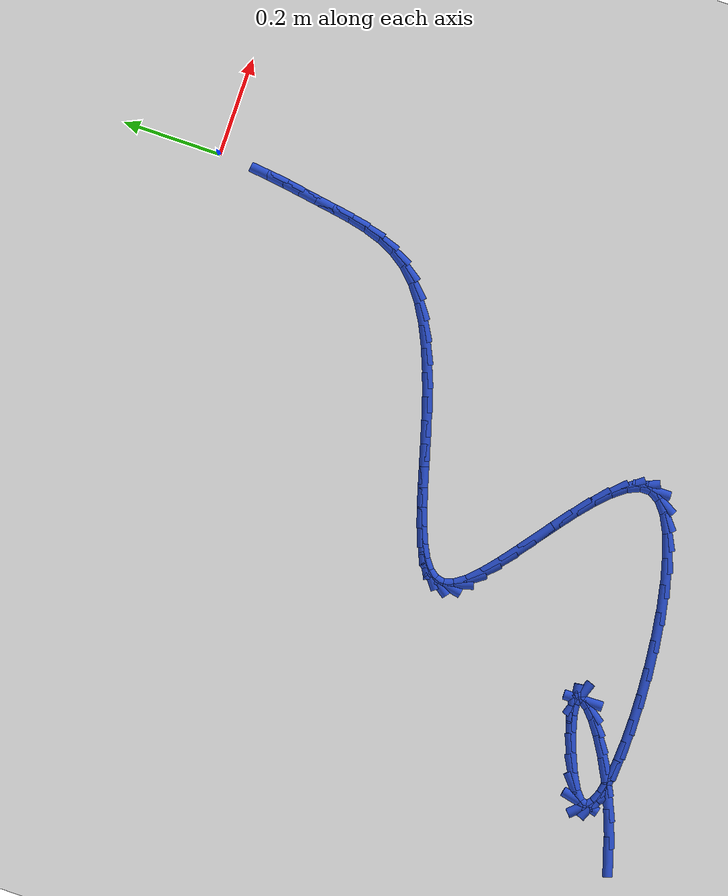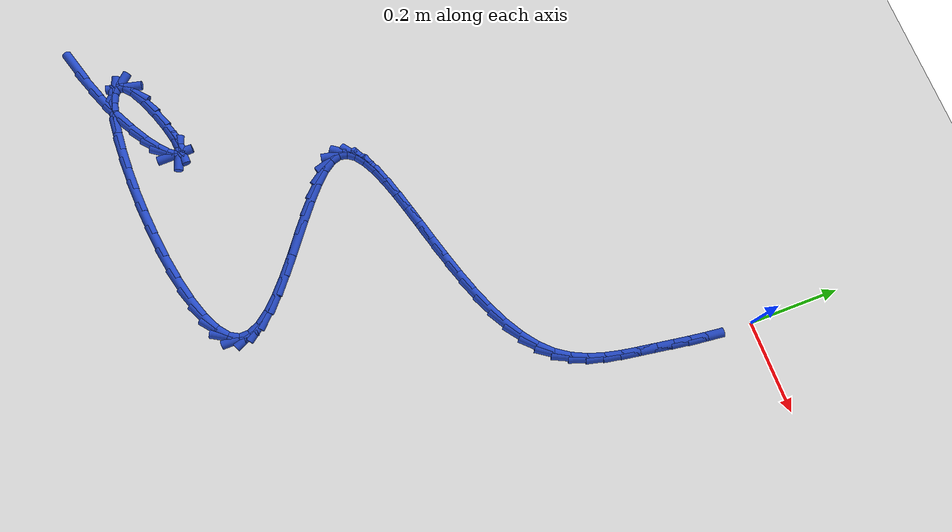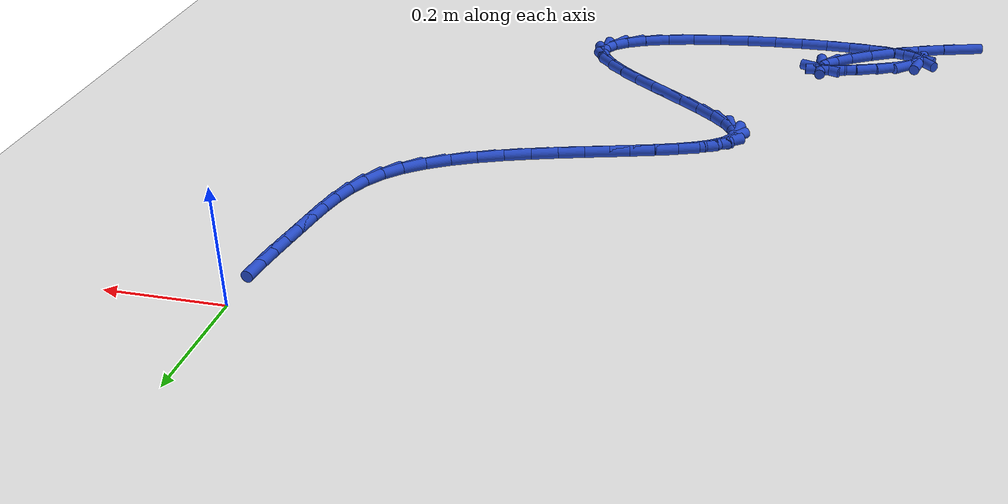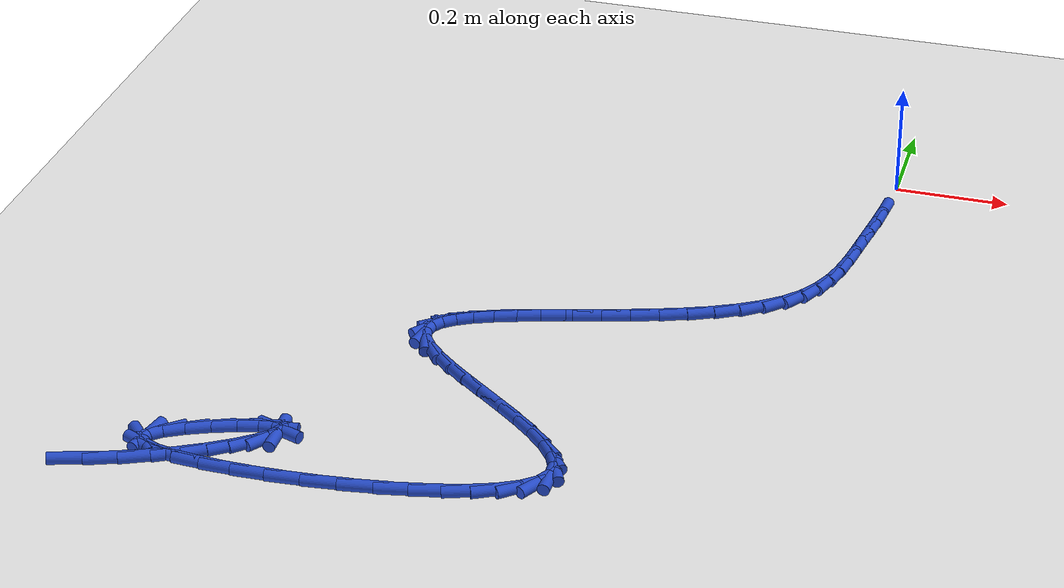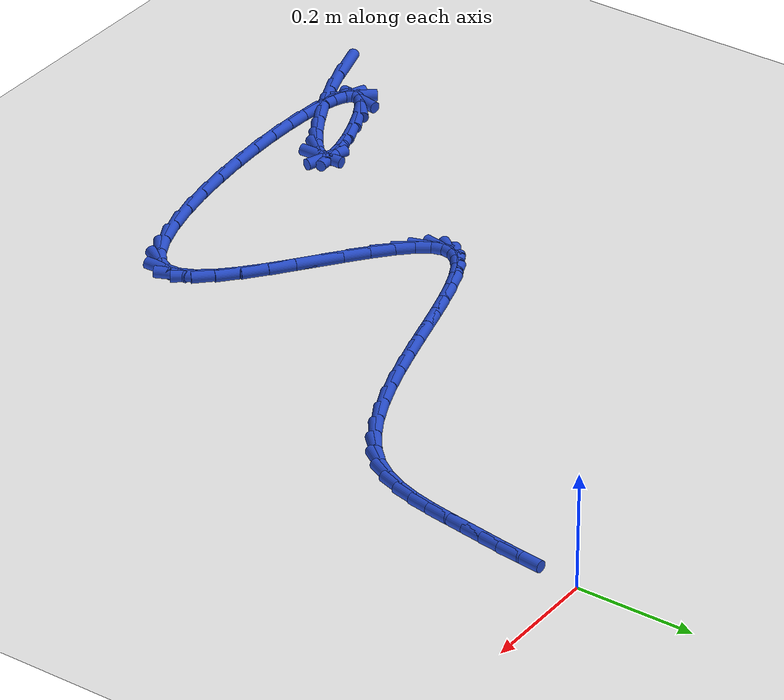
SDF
<sdf version="1.6">
 <world name="default">
  <model name="ground_plane">
   <static>1</static>
   <link name="link">
    <collision name="collision">
     <geometry><plane><normal>0 0 1</normal><size>100 100</size></plane></geometry>
     <surface><friction><ode><mu>100</mu><mu2>50</mu2></ode></friction></surface>
    </collision>
    <visual name="visual">
     <cast_shadows>0</cast_shadows>
     <geometry><plane><normal>0 0 1</normal><size>100 100</size></plane></geometry>
     <material>
      <script><uri>file://media/materials/scripts/gazebo.material</uri><name>Gazebo/WhiteGlow</name></script>
     </material>
    </visual>
   </link>
  </model>
  <model name="line">
   <link name="link_215">
    <pose>-1.0660260500221919 -1.176704172631361 0.01 0 1.57 0.29865976372516234</pose>
    <collision name="collision">
     <geometry><cylinder><radius>0.01</radius><length>0.08</length></cylinder></geometry>
    </collision>
    <visual name="visual">
     <material>
      <script><name>Gazebo/Blue</name><uri>file://media/materials/scripts/gazebo.material</uri></script>
     </material>
     <geometry><cylinder><radius>0.01</radius><length>0.08</length></cylinder></geometry>
    </visual>
   </link>
   <link name="link_216">
    <pose>-1.013445006749362 -1.1605161322696256 0.01 0 1.57 0.36410320243870264</pose>
    <collision name="collision">
     <geometry><cylinder><radius>0.01</radius><length>0.08</length></cylinder></geometry>
    </collision>
    <visual name="visual">
     <material>
      <script><name>Gazebo/Blue</name><uri>file://media/materials/scripts/gazebo.material</uri></script>
     </material>
     <geometry><cylinder><radius>0.01</radius><length>0.08</length></cylinder></geometry>
    </visual>
   </link>
   <link name="link_217">
    <pose>-0.9640717750954726 -1.1417002571037784 0.01 0 1.57 0.424782122286045</pose>
    <collision name="collision">
     <geometry><cylinder><radius>0.01</radius><length>0.08</length></cylinder></geometry>
    </collision>
    <visual name="visual">
     <material>
      <script><name>Gazebo/Blue</name><uri>file://media/materials/scripts/gazebo.material</uri></script>
     </material>
     <geometry><cylinder><radius>0.01</radius><length>0.08</length></cylinder></geometry>
    </visual>
   </link>
   <link name="link_218">
    <pose>-0.9188742128389027 -1.1212564653543864 0.01 0 1.57 0.4842964629629189</pose>
    <collision name="collision">
     <geometry><cylinder><radius>0.01</radius><length>0.08</length></cylinder></geometry>
    </collision>
    <visual name="visual">
     <material>
      <script><name>Gazebo/Blue</name><uri>file://media/materials/scripts/gazebo.material</uri></script>
     </material>
     <geometry><cylinder><radius>0.01</radius><length>0.08</length></cylinder></geometry>
    </visual>
   </link>
   <link name="link_219">
    <pose>-0.8788201777580306 -1.1001846752420148 0.01 0 1.57 0.5476295054498512</pose>
    <collision name="collision">
     <geometry><cylinder><radius>0.01</radius><length>0.08</length></cylinder></geometry>
    </collision>
    <visual name="visual">
     <material>
      <script><name>Gazebo/Blue</name><uri>file://media/materials/scripts/gazebo.material</uri></script>
     </material>
     <geometry><cylinder><radius>0.01</radius><length>0.08</length></cylinder></geometry>
    </visual>
   </link>
   <link name="link_220">
    <pose>-0.8448775276312337 -1.0794848049872297 0.01 0 1.57 0.6236890342531957</pose>
    <collision name="collision">
     <geometry><cylinder><radius>0.01</radius><length>0.08</length></cylinder></geometry>
    </collision>
    <visual name="visual">
     <material>
      <script><name>Gazebo/Blue</name><uri>file://media/materials/scripts/gazebo.material</uri></script>
     </material>
     <geometry><cylinder><radius>0.01</radius><length>0.08</length></cylinder></geometry>
    </visual>
   </link>
   <link name="link_221">
    <pose>-0.8180141202368899 -1.0601567728105954 0.01 0 1.57 0.7334489518400898</pose>
    <collision name="collision">
     <geometry><cylinder><radius>0.01</radius><length>0.08</length></cylinder></geometry>
    </collision>
    <visual name="visual">
     <material>
      <script><name>Gazebo/Blue</name><uri>file://media/materials/scripts/gazebo.material</uri></script>
     </material>
     <geometry><cylinder><radius>0.01</radius><length>0.08</length></cylinder></geometry>
    </visual>
   </link>
   <link name="link_222">
    <pose>-0.7991978133533771 -1.0432004969326785 0.01 0 1.57 0.9457832518824199</pose>
    <collision name="collision">
     <geometry><cylinder><radius>0.01</radius><length>0.08</length></cylinder></geometry>
    </collision>
    <visual name="visual">
     <material>
      <script><name>Gazebo/Blue</name><uri>file://media/materials/scripts/gazebo.material</uri></script>
     </material>
     <geometry><cylinder><radius>0.01</radius><length>0.08</length></cylinder></geometry>
    </visual>
   </link>
   <link name="link_223">
    <pose>-0.7893964647590729 -1.029615895574044 0.01 0 1.57 -1.5511019990825408</pose>
    <collision name="collision">
     <geometry><cylinder><radius>0.01</radius><length>0.08</length></cylinder></geometry>
    </collision>
    <visual name="visual">
     <material>
      <script><name>Gazebo/Blue</name><uri>file://media/materials/scripts/gazebo.material</uri></script>
     </material>
     <geometry><cylinder><radius>0.01</radius><length>0.08</length></cylinder></geometry>
    </visual>
   </link>
   <link name="link_224">
    <pose>-0.7895779322323553 -1.0204028869552575 0.01 0 1.57 -0.3322865113160704</pose>
    <collision name="collision">
     <geometry><cylinder><radius>0.01</radius><length>0.08</length></cylinder></geometry>
    </collision>
    <visual name="visual">
     <material>
      <script><name>Gazebo/Blue</name><uri>file://media/materials/scripts/gazebo.material</uri></script>
     </material>
     <geometry><cylinder><radius>0.01</radius><length>0.08</length></cylinder></geometry>
    </visual>
   </link>
   <link name="link_225">
    <pose>-0.8007100735516022 -1.016561389296885 0.01 0 1.57 0.10889840658192411</pose>
    <collision name="collision">
     <geometry><cylinder><radius>0.01</radius><length>0.08</length></cylinder></geometry>
    </collision>
    <visual name="visual">
     <material>
      <script><name>Gazebo/Blue</name><uri>file://media/materials/scripts/gazebo.material</uri></script>
     </material>
     <geometry><cylinder><radius>0.01</radius><length>0.08</length></cylinder></geometry>
    </visual>
   </link>
   <link name="link_226">
    <pose>-0.8237299229771098 -1.0190781708157155 0.01 0 1.57 0.25835756293776324</pose>
    <collision name="collision">
     <geometry><cylinder><radius>0.01</radius><length>0.08</length></cylinder></geometry>
    </collision>
    <visual name="visual">
     <material>
      <script><name>Gazebo/Blue</name><uri>file://media/materials/scripts/gazebo.material</uri></script>
     </material>
     <geometry><cylinder><radius>0.01</radius><length>0.08</length></cylinder></geometry>
    </visual>
   </link>
   <link name="link_227">
    <pose>-0.8571760820042069 -1.0279167745459719 0.01 0 1.57 0.33593090128321823</pose>
    <collision name="collision">
     <geometry><cylinder><radius>0.01</radius><length>0.08</length></cylinder></geometry>
    </collision>
    <visual name="visual">
     <material>
      <script><name>Gazebo/Blue</name><uri>file://media/materials/scripts/gazebo.material</uri></script>
     </material>
     <geometry><cylinder><radius>0.01</radius><length>0.08</length></cylinder></geometry>
    </visual>
   </link>
   <link name="link_228">
    <pose>-0.895513930933169 -1.0413030160517487 0.01 0 1.57 0.4050163627839261</pose>
    <collision name="collision">
     <geometry><cylinder><radius>0.01</radius><length>0.08</length></cylinder></geometry>
    </collision>
    <visual name="visual">
     <material>
      <script><name>Gazebo/Blue</name><uri>file://media/materials/scripts/gazebo.material</uri></script>
     </material>
     <geometry><cylinder><radius>0.01</radius><length>0.08</length></cylinder></geometry>
    </visual>
   </link>
   <link name="link_229">
    <pose>-0.9328133262569834 -1.0572939715745984 0.01 0 1.57 0.502103951083237</pose>
    <collision name="collision">
     <geometry><cylinder><radius>0.01</radius><length>0.08</length></cylinder></geometry>
    </collision>
    <visual name="visual">
     <material>
      <script><name>Gazebo/Blue</name><uri>file://media/materials/scripts/gazebo.material</uri></script>
     </material>
     <geometry><cylinder><radius>0.01</radius><length>0.08</length></cylinder></geometry>
    </visual>
   </link>
   <link name="link_230">
    <pose>-0.9631441244686376 -1.0739467173560744 0.01 0 1.57 0.7187620743325814</pose>
    <collision name="collision">
     <geometry><cylinder><radius>0.01</radius><length>0.08</length></cylinder></geometry>
    </collision>
    <visual name="visual">
     <material>
      <script><name>Gazebo/Blue</name><uri>file://media/materials/scripts/gazebo.material</uri></script>
     </material>
     <geometry><cylinder><radius>0.01</radius><length>0.08</length></cylinder></geometry>
    </visual>
   </link>
   <link name="link_231">
    <pose>-0.9807716481405246 -1.0893686866153272 0.01 0 1.57 1.3496316247946893</pose>
    <collision name="collision">
     <geometry><cylinder><radius>0.01</radius><length>0.08</length></cylinder></geometry>
    </collision>
    <visual name="visual">
     <material>
      <script><name>Gazebo/Blue</name><uri>file://media/materials/scripts/gazebo.material</uri></script>
     </material>
     <geometry><cylinder><radius>0.01</radius><length>0.08</length></cylinder></geometry>
    </visual>
   </link>
   <link name="link_232">
    <pose>-0.9837567614546352 -1.1026451395396846 0.01 0 1.57 -0.8300520435558587</pose>
    <collision name="collision">
     <geometry><cylinder><radius>0.01</radius><length>0.08</length></cylinder></geometry>
    </collision>
    <visual name="visual">
     <material>
      <script><name>Gazebo/Blue</name><uri>file://media/materials/scripts/gazebo.material</uri></script>
     </material>
     <geometry><cylinder><radius>0.01</radius><length>0.08</length></cylinder></geometry>
    </visual>
   </link>
   <link name="link_233">
    <pose>-0.973603371383606 -1.1137483507243182 0.01 0 1.57 -0.39116859086869754</pose>
    <collision name="collision">
     <geometry><cylinder><radius>0.01</radius><length>0.08</length></cylinder></geometry>
    </collision>
    <visual name="visual">
     <material>
      <script><name>Gazebo/Blue</name><uri>file://media/materials/scripts/gazebo.material</uri></script>
     </material>
     <geometry><cylinder><radius>0.01</radius><length>0.08</length></cylinder></geometry>
    </visual>
   </link>
   <link name="link_234">
    <pose>-0.9519401411815037 -1.1226827351198425 0.01 0 1.57 -0.21141025146539294</pose>
    <collision name="collision">
     <geometry><cylinder><radius>0.01</radius><length>0.08</length></cylinder></geometry>
    </collision>
    <visual name="visual">
     <material>
      <script><name>Gazebo/Blue</name><uri>file://media/materials/scripts/gazebo.material</uri></script>
     </material>
     <geometry><cylinder><radius>0.01</radius><length>0.08</length></cylinder></geometry>
    </visual>
   </link>
   <link name="link_235">
    <pose>-0.9203957341023972 -1.1294527076768734 0.01 0 1.57 -0.11532351335722035</pose>
    <collision name="collision">
     <geometry><cylinder><radius>0.01</radius><length>0.08</length></cylinder></geometry>
    </collision>
    <visual name="visual">
     <material>
      <script><name>Gazebo/Blue</name><uri>file://media/materials/scripts/gazebo.material</uri></script>
     </material>
     <geometry><cylinder><radius>0.01</radius><length>0.08</length></cylinder></geometry>
    </visual>
   </link>
   <link name="link_236">
    <pose>-0.8805988134003541 -1.1340626833460248 0.01 0 1.57 -0.0528235614252269</pose>
    <collision name="collision">
     <geometry><cylinder><radius>0.01</radius><length>0.08</length></cylinder></geometry>
    </collision>
    <visual name="visual">
     <material>
      <script><name>Gazebo/Blue</name><uri>file://media/materials/scripts/gazebo.material</uri></script>
     </material>
     <geometry><cylinder><radius>0.01</radius><length>0.08</length></cylinder></geometry>
    </visual>
   </link>
   <link name="link_237">
    <pose>-0.8341780423294427 -1.136517077077912 0.01 0 1.57 -0.005897453641335418</pose>
    <collision name="collision">
     <geometry><cylinder><radius>0.01</radius><length>0.08</length></cylinder></geometry>
    </collision>
    <visual name="visual">
     <material>
      <script><name>Gazebo/Blue</name><uri>file://media/materials/scripts/gazebo.material</uri></script>
     </material>
     <geometry><cylinder><radius>0.01</radius><length>0.08</length></cylinder></geometry>
    </visual>
   </link>
   <link name="link_238">
    <pose>-0.7827620841437309 -1.13682030382315 0.01 0 1.57 0.03363903571250914</pose>
    <collision name="collision">
     <geometry><cylinder><radius>0.01</radius><length>0.08</length></cylinder></geometry>
    </collision>
    <visual name="visual">
     <material>
      <script><name>Gazebo/Blue</name><uri>file://media/materials/scripts/gazebo.material</uri></script>
     </material>
     <geometry><cylinder><radius>0.01</radius><length>0.08</length></cylinder></geometry>
    </visual>
   </link>
   <link name="link_239">
    <pose>-0.7279796020972868 -1.134976778532354 0.01 0 1.57 0.07040428901464686</pose>
    <collision name="collision">
     <geometry><cylinder><radius>0.01</radius><length>0.08</length></cylinder></geometry>
    </collision>
    <visual name="visual">
     <material>
      <script><name>Gazebo/Blue</name><uri>file://media/materials/scripts/gazebo.material</uri></script>
     </material>
     <geometry><cylinder><radius>0.01</radius><length>0.08</length></cylinder></geometry>
    </visual>
   </link>
   <link name="link_240">
    <pose>-0.6714592594441786 -1.130990916156138 0.01 0 1.57 0.10771905624261414</pose>
    <collision name="collision">
     <geometry><cylinder><radius>0.01</radius><length>0.08</length></cylinder></geometry>
    </collision>
    <visual name="visual">
     <material>
      <script><name>Gazebo/Blue</name><uri>file://media/materials/scripts/gazebo.material</uri></script>
     </material>
     <geometry><cylinder><radius>0.01</radius><length>0.08</length></cylinder></geometry>
    </visual>
   </link>
   <link name="link_241">
    <pose>-0.6148297194384744 -1.124867131645118 0.01 0 1.57 0.1487263337976104</pose>
    <collision name="collision">
     <geometry><cylinder><radius>0.01</radius><length>0.08</length></cylinder></geometry>
    </collision>
    <visual name="visual">
     <material>
      <script><name>Gazebo/Blue</name><uri>file://media/materials/scripts/gazebo.material</uri></script>
     </material>
     <geometry><cylinder><radius>0.01</radius><length>0.08</length></cylinder></geometry>
    </visual>
   </link>
   <link name="link_242">
    <pose>-0.5597196453342421 -1.1166098399499085 0.01 0 1.57 0.19728443573045676</pose>
    <collision name="collision">
     <geometry><cylinder><radius>0.01</radius><length>0.08</length></cylinder></geometry>
    </collision>
    <visual name="visual">
     <material>
      <script><name>Gazebo/Blue</name><uri>file://media/materials/scripts/gazebo.material</uri></script>
     </material>
     <geometry><cylinder><radius>0.01</radius><length>0.08</length></cylinder></geometry>
    </visual>
   </link>
   <link name="link_243">
    <pose>-0.50775770038555 -1.1062234560211244 0.01 0 1.57 0.2591842593599242</pose>
    <collision name="collision">
     <geometry><cylinder><radius>0.01</radius><length>0.08</length></cylinder></geometry>
    </collision>
    <visual name="visual">
     <material>
      <script><name>Gazebo/Blue</name><uri>file://media/materials/scripts/gazebo.material</uri></script>
     </material>
     <geometry><cylinder><radius>0.01</radius><length>0.08</length></cylinder></geometry>
    </visual>
   </link>
   <link name="link_244">
    <pose>-0.46057254784646595 -1.09371239480938 0.01 0 1.57 0.34448347293704495</pose>
    <collision name="collision">
     <geometry><cylinder><radius>0.01</radius><length>0.08</length></cylinder></geometry>
    </collision>
    <visual name="visual">
     <material>
      <script><name>Gazebo/Blue</name><uri>file://media/materials/scripts/gazebo.material</uri></script>
     </material>
     <geometry><cylinder><radius>0.01</radius><length>0.08</length></cylinder></geometry>
    </visual>
   </link>
   <link name="link_245">
    <pose>-0.4197928509710579 -1.0790810712652914 0.01 0 1.57 0.47275216199394476</pose>
    <collision name="collision">
     <geometry><cylinder><radius>0.01</radius><length>0.08</length></cylinder></geometry>
    </collision>
    <visual name="visual">
     <material>
      <script><name>Gazebo/Blue</name><uri>file://media/materials/scripts/gazebo.material</uri></script>
     </material>
     <geometry><cylinder><radius>0.01</radius><length>0.08</length></cylinder></geometry>
    </visual>
   </link>
   <link name="link_246">
    <pose>-0.3870472730133941 -1.062333900339473 0.01 0 1.57 0.685020119950902</pose>
    <collision name="collision">
     <geometry><cylinder><radius>0.01</radius><length>0.08</length></cylinder></geometry>
    </collision>
    <visual name="visual">
     <material>
      <script><name>Gazebo/Blue</name><uri>file://media/materials/scripts/gazebo.material</uri></script>
     </material>
     <geometry><cylinder><radius>0.01</radius><length>0.08</length></cylinder></geometry>
    </visual>
   </link>
   <link name="link_247">
    <pose>-0.36396447722754277 -1.0434752969825396 0.01 0 1.57 1.0584586330476327</pose>
    <collision name="collision">
     <geometry><cylinder><radius>0.01</radius><length>0.08</length></cylinder></geometry>
    </collision>
    <visual name="visual">
     <material>
      <script><name>Gazebo/Blue</name><uri>file://media/materials/scripts/gazebo.material</uri></script>
     </material>
     <geometry><cylinder><radius>0.01</radius><length>0.08</length></cylinder></geometry>
    </visual>
   </link>
   <link name="link_248">
    <pose>-0.3521727647972965 -1.022509712794568 0.01 0 1.57 -1.5541428581048489</pose>
    <collision name="collision">
     <geometry><cylinder><radius>0.01</radius><length>0.08</length></cylinder></geometry>
    </collision>
    <visual name="visual">
     <material>
      <script><name>Gazebo/Blue</name><uri>file://media/materials/scripts/gazebo.material</uri></script>
     </material>
     <geometry><cylinder><radius>0.01</radius><length>0.08</length></cylinder></geometry>
    </visual>
   </link>
   <link name="link_249">
    <pose>-0.3525557089186907 -0.9995169821982228 0.01 0 1.57 -1.1475095869552783</pose>
    <collision name="collision">
     <geometry><cylinder><radius>0.01</radius><length>0.08</length></cylinder></geometry>
    </collision>
    <visual name="visual">
     <material>
      <script><name>Gazebo/Blue</name><uri>file://media/materials/scripts/gazebo.material</uri></script>
     </material>
     <geometry><cylinder><radius>0.01</radius><length>0.08</length></cylinder></geometry>
    </visual>
   </link>
   <link name="link_250">
    <pose>-0.36368634437307895 -0.9748108168307567 0.01 0 1.57 -0.9161155601190665</pose>
    <collision name="collision">
     <geometry><cylinder><radius>0.01</radius><length>0.08</length></cylinder></geometry>
    </collision>
    <visual name="visual">
     <material>
      <script><name>Gazebo/Blue</name><uri>file://media/materials/scripts/gazebo.material</uri></script>
     </material>
     <geometry><cylinder><radius>0.01</radius><length>0.08</length></cylinder></geometry>
    </visual>
   </link>
   <link name="link_251">
    <pose>-0.38369094624991174 -0.9487501502186875 0.01 0 1.57 -0.7863487720074769</pose>
    <collision name="collision">
     <geometry><cylinder><radius>0.01</radius><length>0.08</length></cylinder></geometry>
    </collision>
    <visual name="visual">
     <material>
      <script><name>Gazebo/Blue</name><uri>file://media/materials/scripts/gazebo.material</uri></script>
     </material>
     <geometry><cylinder><radius>0.01</radius><length>0.08</length></cylinder></geometry>
    </visual>
   </link>
   <link name="link_252">
    <pose>-0.4106957896386394 -0.9216939158885329 0.01 0 1.57 -0.7113416397713062</pose>
    <collision name="collision">
     <geometry><cylinder><radius>0.01</radius><length>0.08</length></cylinder></geometry>
    </collision>
    <visual name="visual">
     <material>
      <script><name>Gazebo/Blue</name><uri>file://media/materials/scripts/gazebo.material</uri></script>
     </material>
     <geometry><cylinder><radius>0.01</radius><length>0.08</length></cylinder></geometry>
    </visual>
   </link>
   <link name="link_253">
    <pose>-0.44282714962871184 -0.89400104736681 0.01 0 1.57 -0.6689108729106183</pose>
    <collision name="collision">
     <geometry><cylinder><radius>0.01</radius><length>0.08</length></cylinder></geometry>
    </collision>
    <visual name="visual">
     <material>
      <script><name>Gazebo/Blue</name><uri>file://media/materials/scripts/gazebo.material</uri></script>
     </material>
     <geometry><cylinder><radius>0.01</radius><length>0.08</length></cylinder></geometry>
    </visual>
   </link>
   <link name="link_254">
    <pose>-0.4782113013095799 -0.8660304781800371 0.01 0 1.57 -0.6489955276155022</pose>
    <collision name="collision">
     <geometry><cylinder><radius>0.01</radius><length>0.08</length></cylinder></geometry>
    </collision>
    <visual name="visual">
     <material>
      <script><name>Gazebo/Blue</name><uri>file://media/materials/scripts/gazebo.material</uri></script>
     </material>
     <geometry><cylinder><radius>0.01</radius><length>0.08</length></cylinder></geometry>
    </visual>
   </link>
   <link name="link_255">
    <pose>-0.5149745197706934 -0.8381411418547311 0.01 0 1.57 -0.6478586184843099</pose>
    <collision name="collision">
     <geometry><cylinder><radius>0.01</radius><length>0.08</length></cylinder></geometry>
    </collision>
    <visual name="visual">
     <material>
      <script><name>Gazebo/Blue</name><uri>file://media/materials/scripts/gazebo.material</uri></script>
     </material>
     <geometry><cylinder><radius>0.01</radius><length>0.08</length></cylinder></geometry>
    </visual>
   </link>
   <link name="link_256">
    <pose>-0.551243080101503 -0.8106919719174102 0.01 0 1.57 -0.6662284744775939</pose>
    <collision name="collision">
     <geometry><cylinder><radius>0.01</radius><length>0.08</length></cylinder></geometry>
    </collision>
    <visual name="visual">
     <material>
      <script><name>Gazebo/Blue</name><uri>file://media/materials/scripts/gazebo.material</uri></script>
     </material>
     <geometry><cylinder><radius>0.01</radius><length>0.08</length></cylinder></geometry>
    </visual>
   </link>
   <link name="link_257">
    <pose>-0.5851432573914592 -0.7840419018945918 0.01 0 1.57 -0.7100014704574223</pose>
    <collision name="collision">
     <geometry><cylinder><radius>0.01</radius><length>0.08</length></cylinder></geometry>
    </collision>
    <visual name="visual">
     <material>
      <script><name>Gazebo/Blue</name><uri>file://media/materials/scripts/gazebo.material</uri></script>
     </material>
     <geometry><cylinder><radius>0.01</radius><length>0.08</length></cylinder></geometry>
    </visual>
   </link>
   <link name="link_258">
    <pose>-0.6148013267300118 -0.7585498653127932 0.01 0 1.57 -0.7945068693131137</pose>
    <collision name="collision">
     <geometry><cylinder><radius>0.01</radius><length>0.08</length></cylinder></geometry>
    </collision>
    <visual name="visual">
     <material>
      <script><name>Gazebo/Blue</name><uri>file://media/materials/scripts/gazebo.material</uri></script>
     </material>
     <geometry><cylinder><radius>0.01</radius><length>0.08</length></cylinder></geometry>
    </visual>
   </link>
   <link name="link_259">
    <pose>-0.6383435632066113 -0.7345747956985323 0.01 0 1.57 -0.957546260315879</pose>
    <collision name="collision">
     <geometry><cylinder><radius>0.01</radius><length>0.08</length></cylinder></geometry>
    </collision>
    <visual name="visual">
     <material>
      <script><name>Gazebo/Blue</name><uri>file://media/materials/scripts/gazebo.material</uri></script>
     </material>
     <geometry><cylinder><radius>0.01</radius><length>0.08</length></cylinder></geometry>
    </visual>
   </link>
   <link name="link_260">
    <pose>-0.6538962419107079 -0.7124756265783265 0.01 0 1.57 -1.2797168519318511</pose>
    <collision name="collision">
     <geometry><cylinder><radius>0.01</radius><length>0.08</length></cylinder></geometry>
    </collision>
    <visual name="visual">
     <material>
      <script><name>Gazebo/Blue</name><uri>file://media/materials/scripts/gazebo.material</uri></script>
     </material>
     <geometry><cylinder><radius>0.01</radius><length>0.08</length></cylinder></geometry>
    </visual>
   </link>
   <link name="link_261">
    <pose>-0.6598673081228712 -0.6925447518361466 0.01 0 1.57 1.3833856970405314</pose>
    <collision name="collision">
     <geometry><cylinder><radius>0.01</radius><length>0.08</length></cylinder></geometry>
    </collision>
    <visual name="visual">
     <material>
      <script><name>Gazebo/Blue</name><uri>file://media/materials/scripts/gazebo.material</uri></script>
     </material>
     <geometry><cylinder><radius>0.01</radius><length>0.08</length></cylinder></geometry>
    </visual>
   </link>
   <link name="link_262">
    <pose>-0.6564733093078536 -0.6746473148103244 0.01 0 1.57 0.9392019625179543</pose>
    <collision name="collision">
     <geometry><cylinder><radius>0.01</radius><length>0.08</length></cylinder></geometry>
    </collision>
    <visual name="visual">
     <material>
      <script><name>Gazebo/Blue</name><uri>file://media/materials/scripts/gazebo.material</uri></script>
     </material>
     <geometry><cylinder><radius>0.01</radius><length>0.08</length></cylinder></geometry>
    </visual>
   </link>
   <link name="link_263">
    <pose>-0.6446456531986039 -0.6584795856384891 0.01 0 1.57 0.6515990546744764</pose>
    <collision name="collision">
     <geometry><cylinder><radius>0.01</radius><length>0.08</length></cylinder></geometry>
    </collision>
    <visual name="visual">
     <material>
      <script><name>Gazebo/Blue</name><uri>file://media/materials/scripts/gazebo.material</uri></script>
     </material>
     <geometry><cylinder><radius>0.01</radius><length>0.08</length></cylinder></geometry>
    </visual>
   </link>
   <link name="link_264">
    <pose>-0.6253175094541396 -0.6437374182341374 0.01 0 1.57 0.48422270932122063</pose>
    <collision name="collision">
     <geometry><cylinder><radius>0.01</radius><length>0.08</length></cylinder></geometry>
    </collision>
    <visual name="visual">
     <material>
      <script><name>Gazebo/Blue</name><uri>file://media/materials/scripts/gazebo.material</uri></script>
     </material>
     <geometry><cylinder><radius>0.01</radius><length>0.08</length></cylinder></geometry>
    </visual>
   </link>
   <link name="link_265">
    <pose>-0.5994220477334796 -0.6301166665107668 0.01 0 1.57 0.385735057155006</pose>
    <collision name="collision">
     <geometry><cylinder><radius>0.01</radius><length>0.08</length></cylinder></geometry>
    </collision>
    <visual name="visual">
     <material>
      <script><name>Gazebo/Blue</name><uri>file://media/materials/scripts/gazebo.material</uri></script>
     </material>
     <geometry><cylinder><radius>0.01</radius><length>0.08</length></cylinder></geometry>
    </visual>
   </link>
   <link name="link_266">
    <pose>-0.5678924376956402 -0.6173131843818731 0.01 0 1.57 0.3270445693986981</pose>
    <collision name="collision">
     <geometry><cylinder><radius>0.01</radius><length>0.08</length></cylinder></geometry>
    </collision>
    <visual name="visual">
     <material>
      <script><name>Gazebo/Blue</name><uri>file://media/materials/scripts/gazebo.material</uri></script>
     </material>
     <geometry><cylinder><radius>0.01</radius><length>0.08</length></cylinder></geometry>
    </visual>
   </link>
   <link name="link_267">
    <pose>-0.5316618489996402 -0.6050228257609535 0.01 0 1.57 0.29333337672819165</pose>
    <collision name="collision">
     <geometry><cylinder><radius>0.01</radius><length>0.08</length></cylinder></geometry>
    </collision>
    <visual name="visual">
     <material>
      <script><name>Gazebo/Blue</name><uri>file://media/materials/scripts/gazebo.material</uri></script>
     </material>
     <geometry><cylinder><radius>0.01</radius><length>0.08</length></cylinder></geometry>
    </visual>
   </link>
   <link name="link_268">
    <pose>-0.4916634513044978 -0.5929414445615052 0.01 0 1.57 0.2769725599187736</pose>
    <collision name="collision">
     <geometry><cylinder><radius>0.01</radius><length>0.08</length></cylinder></geometry>
    </collision>
    <visual name="visual">
     <material>
      <script><name>Gazebo/Blue</name><uri>file://media/materials/scripts/gazebo.material</uri></script>
     </material>
     <geometry><cylinder><radius>0.01</radius><length>0.08</length></cylinder></geometry>
    </visual>
   </link>
   <link name="link_269">
    <pose>-0.4488304142692304 -0.5807648946970247 0.01 0 1.57 0.2740490499584979</pose>
    <collision name="collision">
     <geometry><cylinder><radius>0.01</radius><length>0.08</length></cylinder></geometry>
    </collision>
    <visual name="visual">
     <material>
      <script><name>Gazebo/Blue</name><uri>file://media/materials/scripts/gazebo.material</uri></script>
     </material>
     <geometry><cylinder><radius>0.01</radius><length>0.08</length></cylinder></geometry>
    </visual>
   </link>
   <link name="link_270">
    <pose>-0.40409590755285657 -0.5681890300810092 0.01 0 1.57 0.2827722461104367</pose>
    <collision name="collision">
     <geometry><cylinder><radius>0.01</radius><length>0.08</length></cylinder></geometry>
    </collision>
    <visual name="visual">
     <material>
      <script><name>Gazebo/Blue</name><uri>file://media/materials/scripts/gazebo.material</uri></script>
     </material>
     <geometry><cylinder><radius>0.01</radius><length>0.08</length></cylinder></geometry>
    </visual>
   </link>
   <link name="link_271">
    <pose>-0.35839310081439374 -0.5549097046269552 0.01 0 1.57 0.3027619073096891</pose>
    <collision name="collision">
     <geometry><cylinder><radius>0.01</radius><length>0.08</length></cylinder></geometry>
    </collision>
    <visual name="visual">
     <material>
      <script><name>Gazebo/Blue</name><uri>file://media/materials/scripts/gazebo.material</uri></script>
     </material>
     <geometry><cylinder><radius>0.01</radius><length>0.08</length></cylinder></geometry>
    </visual>
   </link>
   <link name="link_272">
    <pose>-0.3126551637128604 -0.5406227722483598 0.01 0 1.57 0.3347805888996674</pose>
    <collision name="collision">
     <geometry><cylinder><radius>0.01</radius><length>0.08</length></cylinder></geometry>
    </collision>
    <visual name="visual">
     <material>
      <script><name>Gazebo/Blue</name><uri>file://media/materials/scripts/gazebo.material</uri></script>
     </material>
     <geometry><cylinder><radius>0.01</radius><length>0.08</length></cylinder></geometry>
    </visual>
   </link>
   <link name="link_273">
    <pose>-0.26781526590727406 -0.5250240868587196 0.01 0 1.57 0.38072902573524064</pose>
    <collision name="collision">
     <geometry><cylinder><radius>0.01</radius><length>0.08</length></cylinder></geometry>
    </collision>
    <visual name="visual">
     <material>
      <script><name>Gazebo/Blue</name><uri>file://media/materials/scripts/gazebo.material</uri></script>
     </material>
     <geometry><cylinder><radius>0.01</radius><length>0.08</length></cylinder></geometry>
    </visual>
   </link>
   <link name="link_274">
    <pose>-0.22480657705665302 -0.5078095023715316 0.01 0 1.57 0.44382500538930153</pose>
    <collision name="collision">
     <geometry><cylinder><radius>0.01</radius><length>0.08</length></cylinder></geometry>
    </collision>
    <visual name="visual">
     <material>
      <script><name>Gazebo/Blue</name><uri>file://media/materials/scripts/gazebo.material</uri></script>
     </material>
     <geometry><cylinder><radius>0.01</radius><length>0.08</length></cylinder></geometry>
    </visual>
   </link>
   <link name="link_275">
    <pose>-0.18456226682001514 -0.48867487270029253 0.01 0 1.57 0.5288881527450907</pose>
    <collision name="collision">
     <geometry><cylinder><radius>0.01</radius><length>0.08</length></cylinder></geometry>
    </collision>
    <visual name="visual">
     <material>
      <script><name>Gazebo/Blue</name><uri>file://media/materials/scripts/gazebo.material</uri></script>
     </material>
     <geometry><cylinder><radius>0.01</radius><length>0.08</length></cylinder></geometry>
    </visual>
   </link>
   <link name="link_276">
    <pose>-0.1480155048563784 -0.46731605175849944 0.01 0 1.57 0.6425002399547162</pose>
    <collision name="collision">
     <geometry><cylinder><radius>0.01</radius><length>0.08</length></cylinder></geometry>
    </collision>
    <visual name="visual">
     <material>
      <script><name>Gazebo/Blue</name><uri>file://media/materials/scripts/gazebo.material</uri></script>
     </material>
     <geometry><cylinder><radius>0.01</radius><length>0.08</length></cylinder></geometry>
    </visual>
   </link>
   <link name="link_277">
    <pose>-0.11609946082476076 -0.4434288934596491 0.01 0 1.57 0.7923090342348016</pose>
    <collision name="collision">
     <geometry><cylinder><radius>0.01</radius><length>0.08</length></cylinder></geometry>
    </collision>
    <visual name="visual">
     <material>
      <script><name>Gazebo/Blue</name><uri>file://media/materials/scripts/gazebo.material</uri></script>
     </material>
     <geometry><cylinder><radius>0.01</radius><length>0.08</length></cylinder></geometry>
    </visual>
   </link>
   <link name="link_278">
    <pose>-0.08974680964958928 -0.4167094621380983 0.01 0 1.57 0.970008599695226</pose>
    <collision name="collision">
     <geometry><cylinder><radius>0.01</radius><length>0.08</length></cylinder></geometry>
    </collision>
    <visual name="visual">
     <material>
      <script><name>Gazebo/Blue</name><uri>file://media/materials/scripts/gazebo.material</uri></script>
     </material>
     <geometry><cylinder><radius>0.01</radius><length>0.08</length></cylinder></geometry>
    </visual>
   </link>
   <link name="link_279">
    <pose>-0.06942308165382816 -0.38705250839466304 0.01 0 1.57 1.1298456555280865</pose>
    <collision name="collision">
     <geometry><cylinder><radius>0.01</radius><length>0.08</length></cylinder></geometry>
    </collision>
    <visual name="visual">
     <material>
      <script><name>Gazebo/Blue</name><uri>file://media/materials/scripts/gazebo.material</uri></script>
     </material>
     <geometry><cylinder><radius>0.01</radius><length>0.08</length></cylinder></geometry>
    </visual>
   </link>
   <link name="link_280">
    <pose>-0.054258688274485004 -0.35492063652235717 0.01 0 1.57 1.2553021524300039</pose>
    <collision name="collision">
     <geometry><cylinder><radius>0.01</radius><length>0.08</length></cylinder></geometry>
    </collision>
    <visual name="visual">
     <material>
      <script><name>Gazebo/Blue</name><uri>file://media/materials/scripts/gazebo.material</uri></script>
     </material>
     <geometry><cylinder><radius>0.01</radius><length>0.08</length></cylinder></geometry>
    </visual>
   </link>
   <link name="link_281">
    <pose>-0.043147055630083794 -0.320877245574502 0.01 0 1.57 1.3440464641204108</pose>
    <collision name="collision">
     <geometry><cylinder><radius>0.01</radius><length>0.08</length></cylinder></geometry>
    </collision>
    <visual name="visual">
     <material>
      <script><name>Gazebo/Blue</name><uri>file://media/materials/scripts/gazebo.material</uri></script>
     </material>
     <geometry><cylinder><radius>0.01</radius><length>0.08</length></cylinder></geometry>
    </visual>
   </link>
   <link name="link_282">
    <pose>-0.03498160983914995 -0.28548573460442184 0.01 0 1.57 1.3976849772271849</pose>
    <collision name="collision">
     <geometry><cylinder><radius>0.01</radius><length>0.08</length></cylinder></geometry>
    </collision>
    <visual name="visual">
     <material>
      <script><name>Gazebo/Blue</name><uri>file://media/materials/scripts/gazebo.material</uri></script>
     </material>
     <geometry><cylinder><radius>0.01</radius><length>0.08</length></cylinder></geometry>
    </visual>
   </link>
   <link name="link_283">
    <pose>-0.02865577702020831 -0.24930950266544025 0.01 0 1.57 1.4183316397402705</pose>
    <collision name="collision">
     <geometry><cylinder><radius>0.01</radius><length>0.08</length></cylinder></geometry>
    </collision>
    <visual name="visual">
     <material>
      <script><name>Gazebo/Blue</name><uri>file://media/materials/scripts/gazebo.material</uri></script>
     </material>
     <geometry><cylinder><radius>0.01</radius><length>0.08</length></cylinder></geometry>
    </visual>
   </link>
   <link name="link_284">
    <pose>-0.023063030017019908 -0.21291193126543748 0.01 0 1.57 1.4154787288515673</pose>
    <collision name="collision">
     <geometry><cylinder><radius>0.01</radius><length>0.08</length></cylinder></geometry>
    </collision>
    <visual name="visual">
     <material>
      <script><name>Gazebo/Blue</name><uri>file://media/materials/scripts/gazebo.material</uri></script>
     </material>
     <geometry><cylinder><radius>0.01</radius><length>0.08</length></cylinder></geometry>
    </visual>
   </link>
   <link name="link_285">
    <pose>-0.01739969539493217 -0.176742679583252 0.01 0 1.57 1.4182641477918223</pose>
    <collision name="collision">
     <geometry><cylinder><radius>0.01</radius><length>0.08</length></cylinder></geometry>
    </collision>
    <visual name="visual">
     <material>
      <script><name>Gazebo/Blue</name><uri>file://media/materials/scripts/gazebo.material</uri></script>
     </material>
     <geometry><cylinder><radius>0.01</radius><length>0.08</length></cylinder></geometry>
    </visual>
   </link>
   <link name="link_286">
    <pose>-0.011884725071242915 -0.14086740842335063 0.01 0 1.57 1.4331194356341608</pose>
    <collision name="collision">
     <geometry><cylinder><radius>0.01</radius><length>0.08</length></cylinder></geometry>
    </collision>
    <visual name="visual">
     <material>
      <script><name>Gazebo/Blue</name><uri>file://media/materials/scripts/gazebo.material</uri></script>
     </material>
     <geometry><cylinder><radius>0.01</radius><length>0.08</length></cylinder></geometry>
    </visual>
   </link>
   <link name="link_287">
    <pose>-0.006952694707928605 -0.10527081133540409 0.01 0 1.57 1.4604578147422533</pose>
    <collision name="collision">
     <geometry><cylinder><radius>0.01</radius><length>0.08</length></cylinder></geometry>
    </collision>
    <visual name="visual">
     <material>
      <script><name>Gazebo/Blue</name><uri>file://media/materials/scripts/gazebo.material</uri></script>
     </material>
     <geometry><cylinder><radius>0.01</radius><length>0.08</length></cylinder></geometry>
    </visual>
   </link>
  </model>
 </world>
</sdf>
